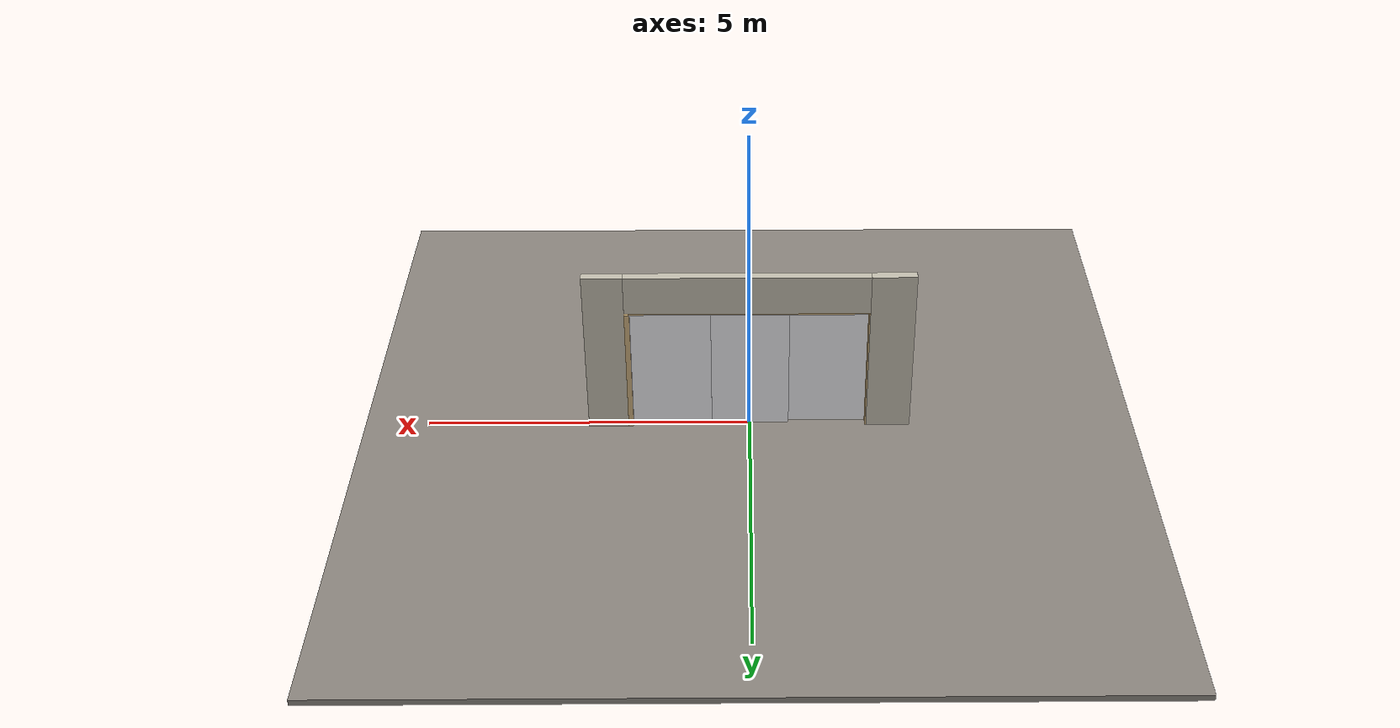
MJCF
<?xml version="1.0" ?>
<mujoco model="db0008_sliding_bypass_minimal">
  <compiler angle="radian" meshdir="../../hardware" texturedir="../../textures" autolimits="true" inertiafromgeom="false"/>
  <option timestep="0.002" integrator="implicitfast" cone="elliptic" impratio="10" noslip_iterations="3">
    <flag multiccd="enable"/>
  </option>
  <size memory="16M"/>
  <default>
    <geom condim="4" solref="0.005 1" solimp="0.95 0.99 0.001"/>
    <joint solreflimit="0.005 1" solimplimit="0.95 0.99 0.001"/>
    <tendon solreflimit="0.005 1"/>
    <equality solref="0.002 1"/>
  </default>
  <visual>
    <headlight ambient="0.4 0.4 0.4" diffuse="0.7 0.7 0.7" specular="0.2 0.2 0.2"/>
    <quality shadowsize="4096"/>
    <map znear="0.01" zfar="60"/>
  </visual>
  <asset>
    <material name="mat_floor" rgba="0.55 0.53 0.5 1" specular="0.2" shininess="0.15" reflectance="0"/>
    <material name="mat_wall" rgba="0.78 0.76 0.7 1" specular="0.2" shininess="0.1" reflectance="0"/>
    <material name="mat_frame" rgba="0.82 0.7 0.5 1" specular="0.2" shininess="0.45" reflectance="0"/>
    <material name="mat_track" rgba="0.8 0.81 0.83 1" specular="0.8" shininess="0.6" reflectance="0.4"/>
    <material name="mat_leaf_0" rgba="0.95 0.95 0.97 1" specular="0.8" shininess="1" reflectance="0.4"/>
    <material name="mat_glass_leaf" rgba="0.95 0.95 0.97 1" specular="0.8" shininess="1" reflectance="0.4"/>
    <material name="mat_patch" rgba="0.75 0.76 0.77 1" specular="0.8" shininess="0.65" reflectance="0.4"/>
    <material name="mat_roller" rgba="0.65 0.66 0.68 1" specular="0.74" shininess="0.5" reflectance="0.36"/>
    <material name="mat_op_nickel_satin" rgba="0.72 0.7 0.66 1" specular="0.8" shininess="0.65" reflectance="0.4"/>
    <material name="mat_leaf_1" rgba="0.95 0.95 0.97 1" specular="0.8" shininess="1" reflectance="0.4"/>
    <material name="mat_leaf_2" rgba="0.95 0.95 0.97 1" specular="0.8" shininess="1" reflectance="0.4"/>
    <material name="mat_hook" rgba="0.75 0.76 0.77 1" specular="0.8" shininess="0.65" reflectance="0.4"/>
    <texture name="skybox" type="skybox" builtin="gradient" rgb1="0.6 0.7 0.85" rgb2="0.9 0.92 0.95" width="256" height="256"/>
  </asset>
  <worldbody>
    <light name="sun" pos="1.5 -2.5 4" dir="-0.3 0.5 -0.8" directional="true" diffuse="0.8 0.8 0.8" specular="0.3 0.3 0.3" castshadow="true"/>
    <light name="fill" pos="-1.5 2.5 3" dir="0.3 -0.5 -0.7" directional="true" diffuse="0.35 0.35 0.4" castshadow="false"/>
    <camera name="robot_view" pos="0 -4.006563 2.147838" xyaxes="1 0 0 0 0.26963 0.962964" fovy="52"/>
    <camera name="far_view" pos="0 4.006563 2.147838" xyaxes="-1 0 0 0 -0.26963 0.962964" fovy="52"/>
    <camera name="iso" pos="3.044988 -3.365513 2.788888" xyaxes="0.741536 0.670913 0 -0.242917 0.268487 0.932151" fovy="46"/>
    <camera name="detail_handle" pos="-1.5305 -0.859 1.28" xyaxes="0.97561 0.219512 0 -0.070934 0.315262 0.94635" fovy="38"/>
    <geom name="floor" type="box" size="6 6 0.05" pos="0 0 -0.05" material="mat_floor" group="0" contype="1" conaffinity="1" friction="0.8 0.005 0.0001" density="2400"/>
    <geom name="wall_left" type="box" size="0.33875 0.0725 1.35" pos="-2.16125 0 1.35" material="mat_wall" group="0" contype="1" conaffinity="1" friction="0.6 0.005 0.0001" density="800"/>
    <geom name="wall_right" type="box" size="0.30875 0.0725 1.35" pos="2.19125 0 1.35" material="mat_wall" group="0" contype="1" conaffinity="1" friction="0.6 0.005 0.0001" density="800"/>
    <geom name="wall_header" type="box" size="1.8525 0.0725 0.3145" pos="0.03 0 2.3855" material="mat_wall" group="0" contype="1" conaffinity="1" friction="0.6 0.005 0.0001" density="800"/>
    <geom name="jamb_l" type="box" size="0.0095 0.0725 1.026" pos="-1.813 0 1.026" material="mat_frame" group="0" contype="1" conaffinity="1" friction="0.6 0.005 0.0001" density="300"/>
    <geom name="jamb_head" type="box" size="1.8225 0.0725 0.0095" pos="0 0 2.0615" material="mat_frame" group="0" contype="1" conaffinity="1" friction="0.6 0.005 0.0001" density="300"/>
    <geom name="jamb_latch_0" type="box" size="0.0395 0.0725 1.026" pos="1.843 0 1.026" material="mat_frame" group="0" contype="1" conaffinity="1" friction="0.6 0.005 0.0001" density="300"/>
    <site name="approach_point" pos="0 -1.5 0" quat="1 0 0 0" size="0.05" rgba="0.2 0.9 0.2 0.5" group="4"/>
    <site name="goal_point" pos="0 1.5 0" quat="1 0 0 0" size="0.05" rgba="0.2 0.9 0.2 0.5" group="4"/>
    <site name="door_plane_center" pos="0 0 1.026" quat="1 0 0 0" size="0.02" rgba="0.2 0.9 0.2 0.5" group="4"/>
    <body name="leaf_0" pos="-1.191 -0.056 0">
      <inertial pos="-0.000042 0 1.027998" mass="37.171787" quat="0.499999 0.499998 0.500002 -0.500001" diaginertia="4.603539644 12.789340044 17.392656602"/>
      <joint name="leaf_0_slide" type="slide" axis="1 0 0" limited="true" range="0 2.362" damping="3.860256" frictionloss="5.691778" armature="0.5"/>
      <geom name="leaf_0_glass" type="box" size="0.6095 0.003 1.016" pos="0 0 1.028" material="mat_glass_leaf" group="0" contype="1" conaffinity="1" friction="0.4 0.005 0.0001" density="1"/>
      <geom name="leaf_0_pull_n" type="box" size="0.0275 0.0005 0.0275" pos="-0.5195 -0.0035 1" material="mat_op_nickel_satin" group="1" contype="0" conaffinity="0" density="1000"/>
      <site name="leaf_0_pull_grip_n" pos="-0.5195 -0.003 1" quat="1 0 0 0" size="0.012" rgba="0.2 0.9 0.2 0.5" group="4"/>
      <site name="leaf_0_edge_mid" pos="-0.6095 0 1.028" quat="1 0 0 0" size="0.02" rgba="0.2 0.9 0.2 0.5" group="4"/>
    </body>
    <body name="leaf_1" pos="0 0 0">
      <inertial pos="0.000042 0 1.027998" mass="37.171787" quat="0.500001 0.500002 0.499998 -0.499999" diaginertia="4.603539644 12.789340044 17.392656602"/>
      <joint name="leaf_1_slide" type="slide" axis="-1 0 0" limited="true" range="0 1.171" damping="3.860256" frictionloss="5.691778" armature="0.5"/>
      <geom name="leaf_1_glass" type="box" size="0.6095 0.003 1.016" pos="0 0 1.028" material="mat_glass_leaf" group="0" contype="1" conaffinity="1" friction="0.4 0.005 0.0001" density="1"/>
      <geom name="leaf_1_pull_n" type="box" size="0.0275 0.0005 0.0275" pos="0.5195 -0.0035 1" material="mat_op_nickel_satin" group="1" contype="0" conaffinity="0" density="1000"/>
      <site name="leaf_1_pull_grip_n" pos="0.5195 -0.003 1" quat="1 0 0 0" size="0.012" rgba="0.2 0.9 0.2 0.5" group="4"/>
      <site name="leaf_1_edge_mid" pos="0.6095 0 1.028" quat="1 0 0 0" size="0.02" rgba="0.2 0.9 0.2 0.5" group="4"/>
    </body>
    <body name="leaf_2" pos="1.191 0.056 0">
      <inertial pos="-0.000042 0 1.027998" mass="37.171787" quat="0.499999 0.499998 0.500002 -0.500001" diaginertia="4.603539644 12.789340044 17.392656602"/>
      <joint name="leaf_2_slide" type="slide" axis="-1 0 0" limited="true" range="0 2.362" damping="3.860256" frictionloss="5.691778" armature="0.5"/>
      <geom name="leaf_2_glass" type="box" size="0.6095 0.003 1.016" pos="0 0 1.028" material="mat_glass_leaf" group="0" contype="1" conaffinity="1" friction="0.4 0.005 0.0001" density="1"/>
      <geom name="leaf_2_pull_n" type="box" size="0.0275 0.0005 0.0275" pos="-0.5195 -0.0035 1" material="mat_op_nickel_satin" group="1" contype="0" conaffinity="0" density="1000"/>
      <site name="leaf_2_pull_grip_n" pos="-0.5195 -0.003 1" quat="1 0 0 0" size="0.012" rgba="0.2 0.9 0.2 0.5" group="4"/>
      <site name="leaf_2_edge_mid" pos="-0.6095 0 1.028" quat="1 0 0 0" size="0.02" rgba="0.2 0.9 0.2 0.5" group="4"/>
    </body>
  </worldbody>
  <sensor>
    <jointpos name="leaf_0_slide_pos" joint="leaf_0_slide"/>
    <jointvel name="leaf_0_slide_vel" joint="leaf_0_slide"/>
    <jointpos name="leaf_1_slide_pos" joint="leaf_1_slide"/>
    <jointvel name="leaf_1_slide_vel" joint="leaf_1_slide"/>
    <jointpos name="leaf_2_slide_pos" joint="leaf_2_slide"/>
    <jointvel name="leaf_2_slide_vel" joint="leaf_2_slide"/>
  </sensor>
</mujoco>
